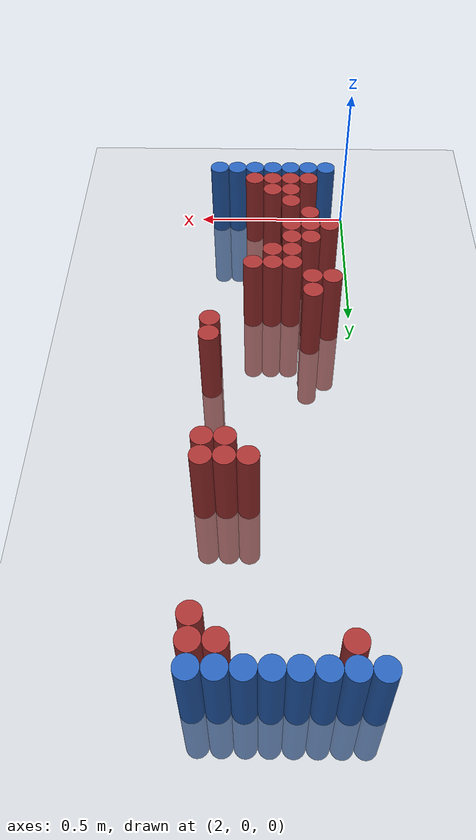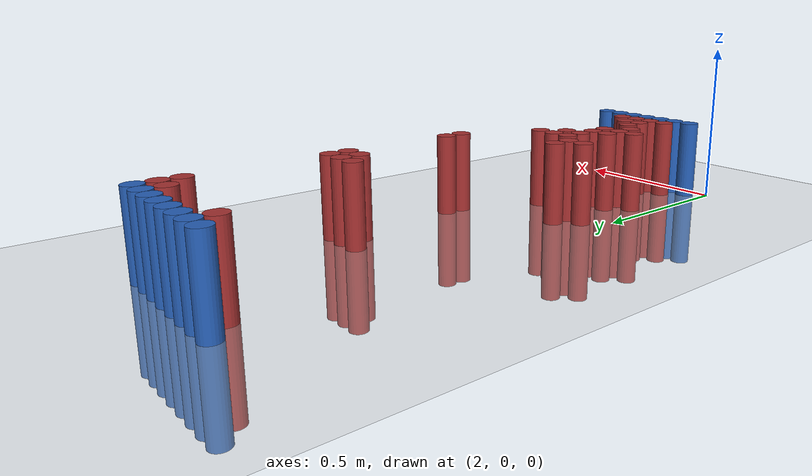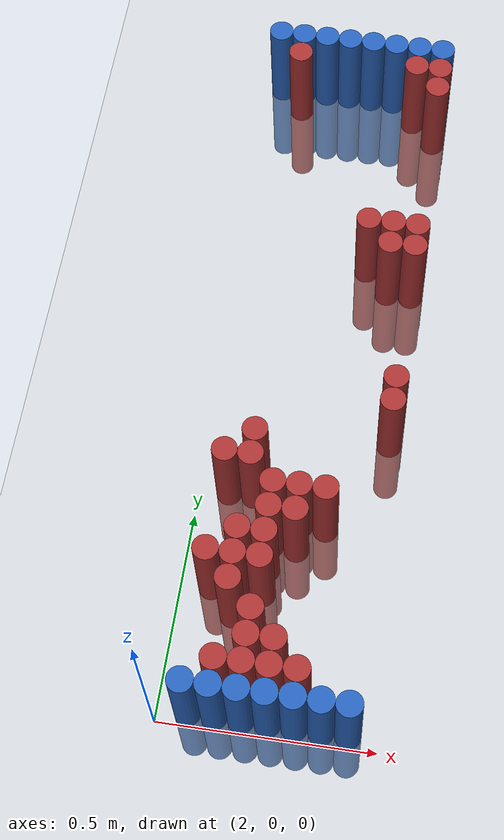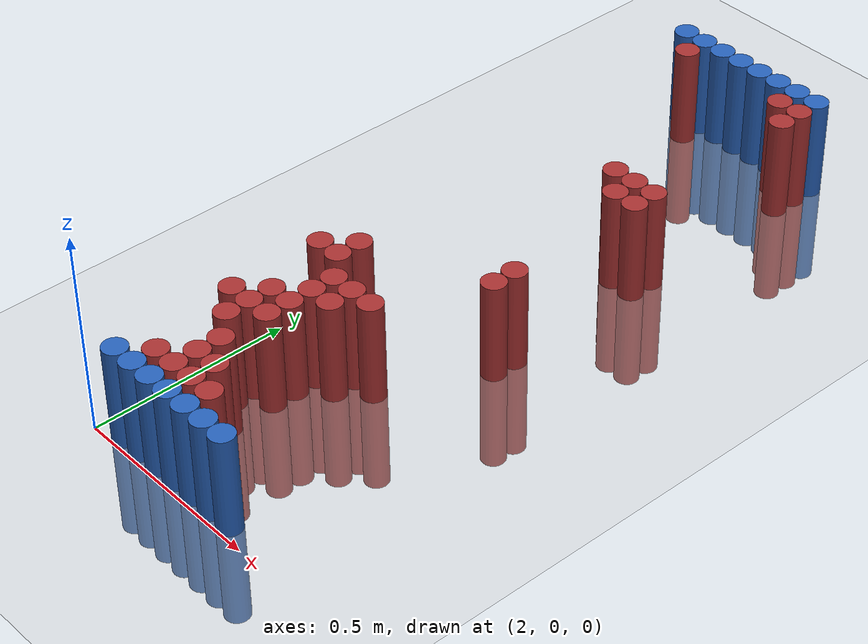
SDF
<sdf version="1.6">
 <world name="default">
  <model name="ground_plane">
   <static>1</static>
   <link name="link">
    <collision name="collision">
     <geometry><plane><normal>0 0 1</normal><size>100 100</size></plane></geometry>
     <surface><friction><ode><mu>100</mu><mu2>50</mu2></ode></friction></surface>
    </collision>
    <visual name="visual">
     <cast_shadows>0</cast_shadows>
     <geometry><plane><normal>0 0 1</normal><size>100 100</size></plane></geometry>
     <material>
      <script><uri>file://media/materials/scripts/gazebo.material</uri><name>Gazebo/Grey</name></script>
     </material>
    </visual>
   </link>
  </model>
  <model name="unit_cylinder_94">
   <static>1</static>
   <pose>2.010000 1.770000 0.000000 0.000000 0.000000 0.000000</pose>
   <link name="link">
    <inertial>
     <mass>1</mass>
     <inertia><ixx>0.145833</ixx><ixy>0</ixy><ixz>0</ixz><iyy>0.145833</iyy><iyz>0</iyz><izz>0.125</izz></inertia>
    </inertial>
    <collision name="collision">
     <geometry><cylinder><radius>0.030000</radius><length>0.5</length></cylinder></geometry>
    </collision>
    <visual name="visual">
     <geometry><cylinder><radius>0.030000</radius><length>0.5</length></cylinder></geometry>
     <material>
      <ambient>0.152000 0.379000 0.720000 1</ambient>
      <diffuse>0.152000 0.379000 0.720000 1</diffuse>
     </material>
     <material>
      <script><name>Gazebo/Grey</name><uri>file://media/materials/scripts/gazebo.material</uri></script>
     </material>
    </visual>
   </link>
  </model>
  <model name="unit_cylinder_95">
   <static>1</static>
   <pose>2.070000 1.770000 0.000000 0.000000 0.000000 0.000000</pose>
   <link name="link">
    <inertial>
     <mass>1</mass>
     <inertia><ixx>0.145833</ixx><ixy>0</ixy><ixz>0</ixz><iyy>0.145833</iyy><iyz>0</iyz><izz>0.125</izz></inertia>
    </inertial>
    <collision name="collision">
     <geometry><cylinder><radius>0.030000</radius><length>0.5</length></cylinder></geometry>
    </collision>
    <visual name="visual">
     <geometry><cylinder><radius>0.030000</radius><length>0.5</length></cylinder></geometry>
     <material>
      <ambient>0.152000 0.379000 0.720000 1</ambient>
      <diffuse>0.152000 0.379000 0.720000 1</diffuse>
     </material>
     <material>
      <script><name>Gazebo/Grey</name><uri>file://media/materials/scripts/gazebo.material</uri></script>
     </material>
    </visual>
   </link>
  </model>
  <model name="unit_cylinder_96">
   <static>1</static>
   <pose>2.130000 1.770000 0.000000 0.000000 0.000000 0.000000</pose>
   <link name="link">
    <inertial>
     <mass>1</mass>
     <inertia><ixx>0.145833</ixx><ixy>0</ixy><ixz>0</ixz><iyy>0.145833</iyy><iyz>0</iyz><izz>0.125</izz></inertia>
    </inertial>
    <collision name="collision">
     <geometry><cylinder><radius>0.030000</radius><length>0.5</length></cylinder></geometry>
    </collision>
    <visual name="visual">
     <geometry><cylinder><radius>0.030000</radius><length>0.5</length></cylinder></geometry>
     <material>
      <ambient>0.152000 0.379000 0.720000 1</ambient>
      <diffuse>0.152000 0.379000 0.720000 1</diffuse>
     </material>
     <material>
      <script><name>Gazebo/Grey</name><uri>file://media/materials/scripts/gazebo.material</uri></script>
     </material>
    </visual>
   </link>
  </model>
  <model name="unit_cylinder_97">
   <static>1</static>
   <pose>2.190000 1.770000 0.000000 0.000000 0.000000 0.000000</pose>
   <link name="link">
    <inertial>
     <mass>1</mass>
     <inertia><ixx>0.145833</ixx><ixy>0</ixy><ixz>0</ixz><iyy>0.145833</iyy><iyz>0</iyz><izz>0.125</izz></inertia>
    </inertial>
    <collision name="collision">
     <geometry><cylinder><radius>0.030000</radius><length>0.5</length></cylinder></geometry>
    </collision>
    <visual name="visual">
     <geometry><cylinder><radius>0.030000</radius><length>0.5</length></cylinder></geometry>
     <material>
      <ambient>0.152000 0.379000 0.720000 1</ambient>
      <diffuse>0.152000 0.379000 0.720000 1</diffuse>
     </material>
     <material>
      <script><name>Gazebo/Grey</name><uri>file://media/materials/scripts/gazebo.material</uri></script>
     </material>
    </visual>
   </link>
  </model>
  <model name="unit_cylinder_98">
   <static>1</static>
   <pose>2.250000 1.770000 0.000000 0.000000 0.000000 0.000000</pose>
   <link name="link">
    <inertial>
     <mass>1</mass>
     <inertia><ixx>0.145833</ixx><ixy>0</ixy><ixz>0</ixz><iyy>0.145833</iyy><iyz>0</iyz><izz>0.125</izz></inertia>
    </inertial>
    <collision name="collision">
     <geometry><cylinder><radius>0.030000</radius><length>0.5</length></cylinder></geometry>
    </collision>
    <visual name="visual">
     <geometry><cylinder><radius>0.030000</radius><length>0.5</length></cylinder></geometry>
     <material>
      <ambient>0.152000 0.379000 0.720000 1</ambient>
      <diffuse>0.152000 0.379000 0.720000 1</diffuse>
     </material>
     <material>
      <script><name>Gazebo/Grey</name><uri>file://media/materials/scripts/gazebo.material</uri></script>
     </material>
    </visual>
   </link>
  </model>
  <model name="unit_cylinder_99">
   <static>1</static>
   <pose>2.310000 1.770000 0.000000 0.000000 0.000000 0.000000</pose>
   <link name="link">
    <inertial>
     <mass>1</mass>
     <inertia><ixx>0.145833</ixx><ixy>0</ixy><ixz>0</ixz><iyy>0.145833</iyy><iyz>0</iyz><izz>0.125</izz></inertia>
    </inertial>
    <collision name="collision">
     <geometry><cylinder><radius>0.030000</radius><length>0.5</length></cylinder></geometry>
    </collision>
    <visual name="visual">
     <geometry><cylinder><radius>0.030000</radius><length>0.5</length></cylinder></geometry>
     <material>
      <ambient>0.152000 0.379000 0.720000 1</ambient>
      <diffuse>0.152000 0.379000 0.720000 1</diffuse>
     </material>
     <material>
      <script><name>Gazebo/Grey</name><uri>file://media/materials/scripts/gazebo.material</uri></script>
     </material>
    </visual>
   </link>
  </model>
  <model name="unit_cylinder_100">
   <static>1</static>
   <pose>2.370000 1.770000 0.000000 0.000000 0.000000 0.000000</pose>
   <link name="link">
    <inertial>
     <mass>1</mass>
     <inertia><ixx>0.145833</ixx><ixy>0</ixy><ixz>0</ixz><iyy>0.145833</iyy><iyz>0</iyz><izz>0.125</izz></inertia>
    </inertial>
    <collision name="collision">
     <geometry><cylinder><radius>0.030000</radius><length>0.5</length></cylinder></geometry>
    </collision>
    <visual name="visual">
     <geometry><cylinder><radius>0.030000</radius><length>0.5</length></cylinder></geometry>
     <material>
      <ambient>0.152000 0.379000 0.720000 1</ambient>
      <diffuse>0.152000 0.379000 0.720000 1</diffuse>
     </material>
     <material>
      <script><name>Gazebo/Grey</name><uri>file://media/materials/scripts/gazebo.material</uri></script>
     </material>
    </visual>
   </link>
  </model>
  <model name="unit_cylinder_101">
   <static>1</static>
   <pose>2.430000 1.770000 0.000000 0.000000 0.000000 0.000000</pose>
   <link name="link">
    <inertial>
     <mass>1</mass>
     <inertia><ixx>0.145833</ixx><ixy>0</ixy><ixz>0</ixz><iyy>0.145833</iyy><iyz>0</iyz><izz>0.125</izz></inertia>
    </inertial>
    <collision name="collision">
     <geometry><cylinder><radius>0.030000</radius><length>0.5</length></cylinder></geometry>
    </collision>
    <visual name="visual">
     <geometry><cylinder><radius>0.030000</radius><length>0.5</length></cylinder></geometry>
     <material>
      <ambient>0.152000 0.379000 0.720000 1</ambient>
      <diffuse>0.152000 0.379000 0.720000 1</diffuse>
     </material>
     <material>
      <script><name>Gazebo/Grey</name><uri>file://media/materials/scripts/gazebo.material</uri></script>
     </material>
    </visual>
   </link>
  </model>
  <model name="unit_cylinder_125">
   <static>1</static>
   <pose>2.070000 1.710000 0.000000 0.000000 0.000000 0.000000</pose>
   <link name="link">
    <inertial>
     <mass>1</mass>
     <inertia><ixx>0.145833</ixx><ixy>0</ixy><ixz>0</ixz><iyy>0.145833</iyy><iyz>0</iyz><izz>0.125</izz></inertia>
    </inertial>
    <collision name="collision">
     <geometry><cylinder><radius>0.030000</radius><length>0.5</length></cylinder></geometry>
    </collision>
    <visual name="visual">
     <geometry><cylinder><radius>0.030000</radius><length>0.5</length></cylinder></geometry>
     <material>
      <ambient>0.648000 0.192000 0.192000 1</ambient>
      <diffuse>0.648000 0.192000 0.192000 1</diffuse>
     </material>
     <material>
      <script><name>Gazebo/Grey</name><uri>file://media/materials/scripts/gazebo.material</uri></script>
     </material>
    </visual>
   </link>
  </model>
  <model name="unit_cylinder_126">
   <static>1</static>
   <pose>2.370000 1.710000 0.000000 0.000000 0.000000 0.000000</pose>
   <link name="link">
    <inertial>
     <mass>1</mass>
     <inertia><ixx>0.145833</ixx><ixy>0</ixy><ixz>0</ixz><iyy>0.145833</iyy><iyz>0</iyz><izz>0.125</izz></inertia>
    </inertial>
    <collision name="collision">
     <geometry><cylinder><radius>0.030000</radius><length>0.5</length></cylinder></geometry>
    </collision>
    <visual name="visual">
     <geometry><cylinder><radius>0.030000</radius><length>0.5</length></cylinder></geometry>
     <material>
      <ambient>0.648000 0.192000 0.192000 1</ambient>
      <diffuse>0.648000 0.192000 0.192000 1</diffuse>
     </material>
     <material>
      <script><name>Gazebo/Grey</name><uri>file://media/materials/scripts/gazebo.material</uri></script>
     </material>
    </visual>
   </link>
  </model>
  <model name="unit_cylinder_127">
   <static>1</static>
   <pose>2.430000 1.710000 0.000000 0.000000 0.000000 0.000000</pose>
   <link name="link">
    <inertial>
     <mass>1</mass>
     <inertia><ixx>0.145833</ixx><ixy>0</ixy><ixz>0</ixz><iyy>0.145833</iyy><iyz>0</iyz><izz>0.125</izz></inertia>
    </inertial>
    <collision name="collision">
     <geometry><cylinder><radius>0.030000</radius><length>0.5</length></cylinder></geometry>
    </collision>
    <visual name="visual">
     <geometry><cylinder><radius>0.030000</radius><length>0.5</length></cylinder></geometry>
     <material>
      <ambient>0.648000 0.192000 0.192000 1</ambient>
      <diffuse>0.648000 0.192000 0.192000 1</diffuse>
     </material>
     <material>
      <script><name>Gazebo/Grey</name><uri>file://media/materials/scripts/gazebo.material</uri></script>
     </material>
    </visual>
   </link>
  </model>
  <model name="unit_cylinder_145">
   <static>1</static>
   <pose>2.430000 1.650000 0.000000 0.000000 0.000000 0.000000</pose>
   <link name="link">
    <inertial>
     <mass>1</mass>
     <inertia><ixx>0.145833</ixx><ixy>0</ixy><ixz>0</ixz><iyy>0.145833</iyy><iyz>0</iyz><izz>0.125</izz></inertia>
    </inertial>
    <collision name="collision">
     <geometry><cylinder><radius>0.030000</radius><length>0.5</length></cylinder></geometry>
    </collision>
    <visual name="visual">
     <geometry><cylinder><radius>0.030000</radius><length>0.5</length></cylinder></geometry>
     <material>
      <ambient>0.648000 0.192000 0.192000 1</ambient>
      <diffuse>0.648000 0.192000 0.192000 1</diffuse>
     </material>
     <material>
      <script><name>Gazebo/Grey</name><uri>file://media/materials/scripts/gazebo.material</uri></script>
     </material>
    </visual>
   </link>
  </model>
  <model name="unit_cylinder_173">
   <static>1</static>
   <pose>2.310000 1.230000 0.000000 0.000000 0.000000 0.000000</pose>
   <link name="link">
    <inertial>
     <mass>1</mass>
     <inertia><ixx>0.145833</ixx><ixy>0</ixy><ixz>0</ixz><iyy>0.145833</iyy><iyz>0</iyz><izz>0.125</izz></inertia>
    </inertial>
    <collision name="collision">
     <geometry><cylinder><radius>0.030000</radius><length>0.5</length></cylinder></geometry>
    </collision>
    <visual name="visual">
     <geometry><cylinder><radius>0.030000</radius><length>0.5</length></cylinder></geometry>
     <material>
      <ambient>0.648000 0.192000 0.192000 1</ambient>
      <diffuse>0.648000 0.192000 0.192000 1</diffuse>
     </material>
     <material>
      <script><name>Gazebo/Grey</name><uri>file://media/materials/scripts/gazebo.material</uri></script>
     </material>
    </visual>
   </link>
  </model>
  <model name="unit_cylinder_174">
   <static>1</static>
   <pose>2.370000 1.230000 0.000000 0.000000 0.000000 0.000000</pose>
   <link name="link">
    <inertial>
     <mass>1</mass>
     <inertia><ixx>0.145833</ixx><ixy>0</ixy><ixz>0</ixz><iyy>0.145833</iyy><iyz>0</iyz><izz>0.125</izz></inertia>
    </inertial>
    <collision name="collision">
     <geometry><cylinder><radius>0.030000</radius><length>0.5</length></cylinder></geometry>
    </collision>
    <visual name="visual">
     <geometry><cylinder><radius>0.030000</radius><length>0.5</length></cylinder></geometry>
     <material>
      <ambient>0.648000 0.192000 0.192000 1</ambient>
      <diffuse>0.648000 0.192000 0.192000 1</diffuse>
     </material>
     <material>
      <script><name>Gazebo/Grey</name><uri>file://media/materials/scripts/gazebo.material</uri></script>
     </material>
    </visual>
   </link>
  </model>
  <model name="unit_cylinder_175">
   <static>1</static>
   <pose>2.430000 1.230000 0.000000 0.000000 0.000000 0.000000</pose>
   <link name="link">
    <inertial>
     <mass>1</mass>
     <inertia><ixx>0.145833</ixx><ixy>0</ixy><ixz>0</ixz><iyy>0.145833</iyy><iyz>0</iyz><izz>0.125</izz></inertia>
    </inertial>
    <collision name="collision">
     <geometry><cylinder><radius>0.030000</radius><length>0.5</length></cylinder></geometry>
    </collision>
    <visual name="visual">
     <geometry><cylinder><radius>0.030000</radius><length>0.5</length></cylinder></geometry>
     <material>
      <ambient>0.648000 0.192000 0.192000 1</ambient>
      <diffuse>0.648000 0.192000 0.192000 1</diffuse>
     </material>
     <material>
      <script><name>Gazebo/Grey</name><uri>file://media/materials/scripts/gazebo.material</uri></script>
     </material>
    </visual>
   </link>
  </model>
  <model name="unit_cylinder_182">
   <static>1</static>
   <pose>2.370000 1.170000 0.000000 0.000000 0.000000 0.000000</pose>
   <link name="link">
    <inertial>
     <mass>1</mass>
     <inertia><ixx>0.145833</ixx><ixy>0</ixy><ixz>0</ixz><iyy>0.145833</iyy><iyz>0</iyz><izz>0.125</izz></inertia>
    </inertial>
    <collision name="collision">
     <geometry><cylinder><radius>0.030000</radius><length>0.5</length></cylinder></geometry>
    </collision>
    <visual name="visual">
     <geometry><cylinder><radius>0.030000</radius><length>0.5</length></cylinder></geometry>
     <material>
      <ambient>0.648000 0.192000 0.192000 1</ambient>
      <diffuse>0.648000 0.192000 0.192000 1</diffuse>
     </material>
     <material>
      <script><name>Gazebo/Grey</name><uri>file://media/materials/scripts/gazebo.material</uri></script>
     </material>
    </visual>
   </link>
  </model>
  <model name="unit_cylinder_183">
   <static>1</static>
   <pose>2.430000 1.170000 0.000000 0.000000 0.000000 0.000000</pose>
   <link name="link">
    <inertial>
     <mass>1</mass>
     <inertia><ixx>0.145833</ixx><ixy>0</ixy><ixz>0</ixz><iyy>0.145833</iyy><iyz>0</iyz><izz>0.125</izz></inertia>
    </inertial>
    <collision name="collision">
     <geometry><cylinder><radius>0.030000</radius><length>0.5</length></cylinder></geometry>
    </collision>
    <visual name="visual">
     <geometry><cylinder><radius>0.030000</radius><length>0.5</length></cylinder></geometry>
     <material>
      <ambient>0.648000 0.192000 0.192000 1</ambient>
      <diffuse>0.648000 0.192000 0.192000 1</diffuse>
     </material>
     <material>
      <script><name>Gazebo/Grey</name><uri>file://media/materials/scripts/gazebo.material</uri></script>
     </material>
    </visual>
   </link>
  </model>
  <model name="unit_cylinder_197">
   <static>1</static>
   <pose>2.430000 0.810000 0.000000 0.000000 0.000000 0.000000</pose>
   <link name="link">
    <inertial>
     <mass>1</mass>
     <inertia><ixx>0.145833</ixx><ixy>0</ixy><ixz>0</ixz><iyy>0.145833</iyy><iyz>0</iyz><izz>0.125</izz></inertia>
    </inertial>
    <collision name="collision">
     <geometry><cylinder><radius>0.030000</radius><length>0.5</length></cylinder></geometry>
    </collision>
    <visual name="visual">
     <geometry><cylinder><radius>0.030000</radius><length>0.5</length></cylinder></geometry>
     <material>
      <ambient>0.648000 0.192000 0.192000 1</ambient>
      <diffuse>0.648000 0.192000 0.192000 1</diffuse>
     </material>
     <material>
      <script><name>Gazebo/Grey</name><uri>file://media/materials/scripts/gazebo.material</uri></script>
     </material>
    </visual>
   </link>
  </model>
  <model name="unit_cylinder_198">
   <static>1</static>
   <pose>2.430000 0.750000 0.000000 0.000000 0.000000 0.000000</pose>
   <link name="link">
    <inertial>
     <mass>1</mass>
     <inertia><ixx>0.145833</ixx><ixy>0</ixy><ixz>0</ixz><iyy>0.145833</iyy><iyz>0</iyz><izz>0.125</izz></inertia>
    </inertial>
    <collision name="collision">
     <geometry><cylinder><radius>0.030000</radius><length>0.5</length></cylinder></geometry>
    </collision>
    <visual name="visual">
     <geometry><cylinder><radius>0.030000</radius><length>0.5</length></cylinder></geometry>
     <material>
      <ambient>0.648000 0.192000 0.192000 1</ambient>
      <diffuse>0.648000 0.192000 0.192000 1</diffuse>
     </material>
     <material>
      <script><name>Gazebo/Grey</name><uri>file://media/materials/scripts/gazebo.material</uri></script>
     </material>
    </visual>
   </link>
  </model>
  <model name="unit_cylinder_201">
   <static>1</static>
   <pose>2.130000 0.630000 0.000000 0.000000 0.000000 0.000000</pose>
   <link name="link">
    <inertial>
     <mass>1</mass>
     <inertia><ixx>0.145833</ixx><ixy>0</ixy><ixz>0</ixz><iyy>0.145833</iyy><iyz>0</iyz><izz>0.125</izz></inertia>
    </inertial>
    <collision name="collision">
     <geometry><cylinder><radius>0.030000</radius><length>0.5</length></cylinder></geometry>
    </collision>
    <visual name="visual">
     <geometry><cylinder><radius>0.030000</radius><length>0.5</length></cylinder></geometry>
     <material>
      <ambient>0.648000 0.192000 0.192000 1</ambient>
      <diffuse>0.648000 0.192000 0.192000 1</diffuse>
     </material>
     <material>
      <script><name>Gazebo/Grey</name><uri>file://media/materials/scripts/gazebo.material</uri></script>
     </material>
    </visual>
   </link>
  </model>
  <model name="unit_cylinder_205">
   <static>1</static>
   <pose>2.070000 0.570000 0.000000 0.000000 0.000000 0.000000</pose>
   <link name="link">
    <inertial>
     <mass>1</mass>
     <inertia><ixx>0.145833</ixx><ixy>0</ixy><ixz>0</ixz><iyy>0.145833</iyy><iyz>0</iyz><izz>0.125</izz></inertia>
    </inertial>
    <collision name="collision">
     <geometry><cylinder><radius>0.030000</radius><length>0.5</length></cylinder></geometry>
    </collision>
    <visual name="visual">
     <geometry><cylinder><radius>0.030000</radius><length>0.5</length></cylinder></geometry>
     <material>
      <ambient>0.648000 0.192000 0.192000 1</ambient>
      <diffuse>0.648000 0.192000 0.192000 1</diffuse>
     </material>
     <material>
      <script><name>Gazebo/Grey</name><uri>file://media/materials/scripts/gazebo.material</uri></script>
     </material>
    </visual>
   </link>
  </model>
  <model name="unit_cylinder_206">
   <static>1</static>
   <pose>2.130000 0.570000 0.000000 0.000000 0.000000 0.000000</pose>
   <link name="link">
    <inertial>
     <mass>1</mass>
     <inertia><ixx>0.145833</ixx><ixy>0</ixy><ixz>0</ixz><iyy>0.145833</iyy><iyz>0</iyz><izz>0.125</izz></inertia>
    </inertial>
    <collision name="collision">
     <geometry><cylinder><radius>0.030000</radius><length>0.5</length></cylinder></geometry>
    </collision>
    <visual name="visual">
     <geometry><cylinder><radius>0.030000</radius><length>0.5</length></cylinder></geometry>
     <material>
      <ambient>0.648000 0.192000 0.192000 1</ambient>
      <diffuse>0.648000 0.192000 0.192000 1</diffuse>
     </material>
     <material>
      <script><name>Gazebo/Grey</name><uri>file://media/materials/scripts/gazebo.material</uri></script>
     </material>
    </visual>
   </link>
  </model>
  <model name="unit_cylinder_208">
   <static>1</static>
   <pose>2.190000 0.510000 0.000000 0.000000 0.000000 0.000000</pose>
   <link name="link">
    <inertial>
     <mass>1</mass>
     <inertia><ixx>0.145833</ixx><ixy>0</ixy><ixz>0</ixz><iyy>0.145833</iyy><iyz>0</iyz><izz>0.125</izz></inertia>
    </inertial>
    <collision name="collision">
     <geometry><cylinder><radius>0.030000</radius><length>0.5</length></cylinder></geometry>
    </collision>
    <visual name="visual">
     <geometry><cylinder><radius>0.030000</radius><length>0.5</length></cylinder></geometry>
     <material>
      <ambient>0.648000 0.192000 0.192000 1</ambient>
      <diffuse>0.648000 0.192000 0.192000 1</diffuse>
     </material>
     <material>
      <script><name>Gazebo/Grey</name><uri>file://media/materials/scripts/gazebo.material</uri></script>
     </material>
    </visual>
   </link>
  </model>
  <model name="unit_cylinder_209">
   <static>1</static>
   <pose>2.250000 0.510000 0.000000 0.000000 0.000000 0.000000</pose>
   <link name="link">
    <inertial>
     <mass>1</mass>
     <inertia><ixx>0.145833</ixx><ixy>0</ixy><ixz>0</ixz><iyy>0.145833</iyy><iyz>0</iyz><izz>0.125</izz></inertia>
    </inertial>
    <collision name="collision">
     <geometry><cylinder><radius>0.030000</radius><length>0.5</length></cylinder></geometry>
    </collision>
    <visual name="visual">
     <geometry><cylinder><radius>0.030000</radius><length>0.5</length></cylinder></geometry>
     <material>
      <ambient>0.648000 0.192000 0.192000 1</ambient>
      <diffuse>0.648000 0.192000 0.192000 1</diffuse>
     </material>
     <material>
      <script><name>Gazebo/Grey</name><uri>file://media/materials/scripts/gazebo.material</uri></script>
     </material>
    </visual>
   </link>
  </model>
  <model name="unit_cylinder_210">
   <static>1</static>
   <pose>2.310000 0.510000 0.000000 0.000000 0.000000 0.000000</pose>
   <link name="link">
    <inertial>
     <mass>1</mass>
     <inertia><ixx>0.145833</ixx><ixy>0</ixy><ixz>0</ixz><iyy>0.145833</iyy><iyz>0</iyz><izz>0.125</izz></inertia>
    </inertial>
    <collision name="collision">
     <geometry><cylinder><radius>0.030000</radius><length>0.5</length></cylinder></geometry>
    </collision>
    <visual name="visual">
     <geometry><cylinder><radius>0.030000</radius><length>0.5</length></cylinder></geometry>
     <material>
      <ambient>0.648000 0.192000 0.192000 1</ambient>
      <diffuse>0.648000 0.192000 0.192000 1</diffuse>
     </material>
     <material>
      <script><name>Gazebo/Grey</name><uri>file://media/materials/scripts/gazebo.material</uri></script>
     </material>
    </visual>
   </link>
  </model>
  <model name="unit_cylinder_213">
   <static>1</static>
   <pose>2.190000 0.450000 0.000000 0.000000 0.000000 0.000000</pose>
   <link name="link">
    <inertial>
     <mass>1</mass>
     <inertia><ixx>0.145833</ixx><ixy>0</ixy><ixz>0</ixz><iyy>0.145833</iyy><iyz>0</iyz><izz>0.125</izz></inertia>
    </inertial>
    <collision name="collision">
     <geometry><cylinder><radius>0.030000</radius><length>0.5</length></cylinder></geometry>
    </collision>
    <visual name="visual">
     <geometry><cylinder><radius>0.030000</radius><length>0.5</length></cylinder></geometry>
     <material>
      <ambient>0.648000 0.192000 0.192000 1</ambient>
      <diffuse>0.648000 0.192000 0.192000 1</diffuse>
     </material>
     <material>
      <script><name>Gazebo/Grey</name><uri>file://media/materials/scripts/gazebo.material</uri></script>
     </material>
    </visual>
   </link>
  </model>
  <model name="unit_cylinder_214">
   <static>1</static>
   <pose>2.250000 0.450000 0.000000 0.000000 0.000000 0.000000</pose>
   <link name="link">
    <inertial>
     <mass>1</mass>
     <inertia><ixx>0.145833</ixx><ixy>0</ixy><ixz>0</ixz><iyy>0.145833</iyy><iyz>0</iyz><izz>0.125</izz></inertia>
    </inertial>
    <collision name="collision">
     <geometry><cylinder><radius>0.030000</radius><length>0.5</length></cylinder></geometry>
    </collision>
    <visual name="visual">
     <geometry><cylinder><radius>0.030000</radius><length>0.5</length></cylinder></geometry>
     <material>
      <ambient>0.648000 0.192000 0.192000 1</ambient>
      <diffuse>0.648000 0.192000 0.192000 1</diffuse>
     </material>
     <material>
      <script><name>Gazebo/Grey</name><uri>file://media/materials/scripts/gazebo.material</uri></script>
     </material>
    </visual>
   </link>
  </model>
  <model name="unit_cylinder_218">
   <static>1</static>
   <pose>2.130000 0.390000 0.000000 0.000000 0.000000 0.000000</pose>
   <link name="link">
    <inertial>
     <mass>1</mass>
     <inertia><ixx>0.145833</ixx><ixy>0</ixy><ixz>0</ixz><iyy>0.145833</iyy><iyz>0</iyz><izz>0.125</izz></inertia>
    </inertial>
    <collision name="collision">
     <geometry><cylinder><radius>0.030000</radius><length>0.5</length></cylinder></geometry>
    </collision>
    <visual name="visual">
     <geometry><cylinder><radius>0.030000</radius><length>0.5</length></cylinder></geometry>
     <material>
      <ambient>0.648000 0.192000 0.192000 1</ambient>
      <diffuse>0.648000 0.192000 0.192000 1</diffuse>
     </material>
     <material>
      <script><name>Gazebo/Grey</name><uri>file://media/materials/scripts/gazebo.material</uri></script>
     </material>
    </visual>
   </link>
  </model>
  <model name="unit_cylinder_219">
   <static>1</static>
   <pose>2.190000 0.390000 0.000000 0.000000 0.000000 0.000000</pose>
   <link name="link">
    <inertial>
     <mass>1</mass>
     <inertia><ixx>0.145833</ixx><ixy>0</ixy><ixz>0</ixz><iyy>0.145833</iyy><iyz>0</iyz><izz>0.125</izz></inertia>
    </inertial>
    <collision name="collision">
     <geometry><cylinder><radius>0.030000</radius><length>0.5</length></cylinder></geometry>
    </collision>
    <visual name="visual">
     <geometry><cylinder><radius>0.030000</radius><length>0.5</length></cylinder></geometry>
     <material>
      <ambient>0.648000 0.192000 0.192000 1</ambient>
      <diffuse>0.648000 0.192000 0.192000 1</diffuse>
     </material>
     <material>
      <script><name>Gazebo/Grey</name><uri>file://media/materials/scripts/gazebo.material</uri></script>
     </material>
    </visual>
   </link>
  </model>
  <model name="unit_cylinder_222">
   <static>1</static>
   <pose>2.070000 0.330000 0.000000 0.000000 0.000000 0.000000</pose>
   <link name="link">
    <inertial>
     <mass>1</mass>
     <inertia><ixx>0.145833</ixx><ixy>0</ixy><ixz>0</ixz><iyy>0.145833</iyy><iyz>0</iyz><izz>0.125</izz></inertia>
    </inertial>
    <collision name="collision">
     <geometry><cylinder><radius>0.030000</radius><length>0.5</length></cylinder></geometry>
    </collision>
    <visual name="visual">
     <geometry><cylinder><radius>0.030000</radius><length>0.5</length></cylinder></geometry>
     <material>
      <ambient>0.648000 0.192000 0.192000 1</ambient>
      <diffuse>0.648000 0.192000 0.192000 1</diffuse>
     </material>
     <material>
      <script><name>Gazebo/Grey</name><uri>file://media/materials/scripts/gazebo.material</uri></script>
     </material>
    </visual>
   </link>
  </model>
  <model name="unit_cylinder_223">
   <static>1</static>
   <pose>2.130000 0.330000 0.000000 0.000000 0.000000 0.000000</pose>
   <link name="link">
    <inertial>
     <mass>1</mass>
     <inertia><ixx>0.145833</ixx><ixy>0</ixy><ixz>0</ixz><iyy>0.145833</iyy><iyz>0</iyz><izz>0.125</izz></inertia>
    </inertial>
    <collision name="collision">
     <geometry><cylinder><radius>0.030000</radius><length>0.5</length></cylinder></geometry>
    </collision>
    <visual name="visual">
     <geometry><cylinder><radius>0.030000</radius><length>0.5</length></cylinder></geometry>
     <material>
      <ambient>0.648000 0.192000 0.192000 1</ambient>
      <diffuse>0.648000 0.192000 0.192000 1</diffuse>
     </material>
     <material>
      <script><name>Gazebo/Grey</name><uri>file://media/materials/scripts/gazebo.material</uri></script>
     </material>
    </visual>
   </link>
  </model>
  <model name="unit_cylinder_224">
   <static>1</static>
   <pose>2.190000 0.330000 0.000000 0.000000 0.000000 0.000000</pose>
   <link name="link">
    <inertial>
     <mass>1</mass>
     <inertia><ixx>0.145833</ixx><ixy>0</ixy><ixz>0</ixz><iyy>0.145833</iyy><iyz>0</iyz><izz>0.125</izz></inertia>
    </inertial>
    <collision name="collision">
     <geometry><cylinder><radius>0.030000</radius><length>0.5</length></cylinder></geometry>
    </collision>
    <visual name="visual">
     <geometry><cylinder><radius>0.030000</radius><length>0.5</length></cylinder></geometry>
     <material>
      <ambient>0.648000 0.192000 0.192000 1</ambient>
      <diffuse>0.648000 0.192000 0.192000 1</diffuse>
     </material>
     <material>
      <script><name>Gazebo/Grey</name><uri>file://media/materials/scripts/gazebo.material</uri></script>
     </material>
    </visual>
   </link>
  </model>
  <model name="unit_cylinder_229">
   <static>1</static>
   <pose>2.130000 0.270000 0.000000 0.000000 0.000000 0.000000</pose>
   <link name="link">
    <inertial>
     <mass>1</mass>
     <inertia><ixx>0.145833</ixx><ixy>0</ixy><ixz>0</ixz><iyy>0.145833</iyy><iyz>0</iyz><izz>0.125</izz></inertia>
    </inertial>
    <collision name="collision">
     <geometry><cylinder><radius>0.030000</radius><length>0.5</length></cylinder></geometry>
    </collision>
    <visual name="visual">
     <geometry><cylinder><radius>0.030000</radius><length>0.5</length></cylinder></geometry>
     <material>
      <ambient>0.648000 0.192000 0.192000 1</ambient>
      <diffuse>0.648000 0.192000 0.192000 1</diffuse>
     </material>
     <material>
      <script><name>Gazebo/Grey</name><uri>file://media/materials/scripts/gazebo.material</uri></script>
     </material>
    </visual>
   </link>
  </model>
  <model name="unit_cylinder_232">
   <static>1</static>
   <pose>2.190000 0.210000 0.000000 0.000000 0.000000 0.000000</pose>
   <link name="link">
    <inertial>
     <mass>1</mass>
     <inertia><ixx>0.145833</ixx><ixy>0</ixy><ixz>0</ixz><iyy>0.145833</iyy><iyz>0</iyz><izz>0.125</izz></inertia>
    </inertial>
    <collision name="collision">
     <geometry><cylinder><radius>0.030000</radius><length>0.5</length></cylinder></geometry>
    </collision>
    <visual name="visual">
     <geometry><cylinder><radius>0.030000</radius><length>0.5</length></cylinder></geometry>
     <material>
      <ambient>0.648000 0.192000 0.192000 1</ambient>
      <diffuse>0.648000 0.192000 0.192000 1</diffuse>
     </material>
     <material>
      <script><name>Gazebo/Grey</name><uri>file://media/materials/scripts/gazebo.material</uri></script>
     </material>
    </visual>
   </link>
  </model>
  <model name="unit_cylinder_233">
   <static>1</static>
   <pose>2.190000 0.150000 0.000000 0.000000 0.000000 0.000000</pose>
   <link name="link">
    <inertial>
     <mass>1</mass>
     <inertia><ixx>0.145833</ixx><ixy>0</ixy><ixz>0</ixz><iyy>0.145833</iyy><iyz>0</iyz><izz>0.125</izz></inertia>
    </inertial>
    <collision name="collision">
     <geometry><cylinder><radius>0.030000</radius><length>0.5</length></cylinder></geometry>
    </collision>
    <visual name="visual">
     <geometry><cylinder><radius>0.030000</radius><length>0.5</length></cylinder></geometry>
     <material>
      <ambient>0.648000 0.192000 0.192000 1</ambient>
      <diffuse>0.648000 0.192000 0.192000 1</diffuse>
     </material>
     <material>
      <script><name>Gazebo/Grey</name><uri>file://media/materials/scripts/gazebo.material</uri></script>
     </material>
    </visual>
   </link>
  </model>
  <model name="unit_cylinder_234">
   <static>1</static>
   <pose>2.250000 0.150000 0.000000 0.000000 0.000000 0.000000</pose>
   <link name="link">
    <inertial>
     <mass>1</mass>
     <inertia><ixx>0.145833</ixx><ixy>0</ixy><ixz>0</ixz><iyy>0.145833</iyy><iyz>0</iyz><izz>0.125</izz></inertia>
    </inertial>
    <collision name="collision">
     <geometry><cylinder><radius>0.030000</radius><length>0.5</length></cylinder></geometry>
    </collision>
    <visual name="visual">
     <geometry><cylinder><radius>0.030000</radius><length>0.5</length></cylinder></geometry>
     <material>
      <ambient>0.648000 0.192000 0.192000 1</ambient>
      <diffuse>0.648000 0.192000 0.192000 1</diffuse>
     </material>
     <material>
      <script><name>Gazebo/Grey</name><uri>file://media/materials/scripts/gazebo.material</uri></script>
     </material>
    </visual>
   </link>
  </model>
  <model name="unit_cylinder_237">
   <static>1</static>
   <pose>2.130000 0.090000 0.000000 0.000000 0.000000 0.000000</pose>
   <link name="link">
    <inertial>
     <mass>1</mass>
     <inertia><ixx>0.145833</ixx><ixy>0</ixy><ixz>0</ixz><iyy>0.145833</iyy><iyz>0</iyz><izz>0.125</izz></inertia>
    </inertial>
    <collision name="collision">
     <geometry><cylinder><radius>0.030000</radius><length>0.5</length></cylinder></geometry>
    </collision>
    <visual name="visual">
     <geometry><cylinder><radius>0.030000</radius><length>0.5</length></cylinder></geometry>
     <material>
      <ambient>0.648000 0.192000 0.192000 1</ambient>
      <diffuse>0.648000 0.192000 0.192000 1</diffuse>
     </material>
     <material>
      <script><name>Gazebo/Grey</name><uri>file://media/materials/scripts/gazebo.material</uri></script>
     </material>
    </visual>
   </link>
  </model>
  <model name="unit_cylinder_238">
   <static>1</static>
   <pose>2.190000 0.090000 0.000000 0.000000 0.000000 0.000000</pose>
   <link name="link">
    <inertial>
     <mass>1</mass>
     <inertia><ixx>0.145833</ixx><ixy>0</ixy><ixz>0</ixz><iyy>0.145833</iyy><iyz>0</iyz><izz>0.125</izz></inertia>
    </inertial>
    <collision name="collision">
     <geometry><cylinder><radius>0.030000</radius><length>0.5</length></cylinder></geometry>
    </collision>
    <visual name="visual">
     <geometry><cylinder><radius>0.030000</radius><length>0.5</length></cylinder></geometry>
     <material>
      <ambient>0.648000 0.192000 0.192000 1</ambient>
      <diffuse>0.648000 0.192000 0.192000 1</diffuse>
     </material>
     <material>
      <script><name>Gazebo/Grey</name><uri>file://media/materials/scripts/gazebo.material</uri></script>
     </material>
    </visual>
   </link>
  </model>
  <model name="unit_cylinder_239">
   <static>1</static>
   <pose>2.250000 0.090000 0.000000 0.000000 0.000000 0.000000</pose>
   <link name="link">
    <inertial>
     <mass>1</mass>
     <inertia><ixx>0.145833</ixx><ixy>0</ixy><ixz>0</ixz><iyy>0.145833</iyy><iyz>0</iyz><izz>0.125</izz></inertia>
    </inertial>
    <collision name="collision">
     <geometry><cylinder><radius>0.030000</radius><length>0.5</length></cylinder></geometry>
    </collision>
    <visual name="visual">
     <geometry><cylinder><radius>0.030000</radius><length>0.5</length></cylinder></geometry>
     <material>
      <ambient>0.648000 0.192000 0.192000 1</ambient>
      <diffuse>0.648000 0.192000 0.192000 1</diffuse>
     </material>
     <material>
      <script><name>Gazebo/Grey</name><uri>file://media/materials/scripts/gazebo.material</uri></script>
     </material>
    </visual>
   </link>
  </model>
  <model name="unit_cylinder_240">
   <static>1</static>
   <pose>2.310000 0.090000 0.000000 0.000000 0.000000 0.000000</pose>
   <link name="link">
    <inertial>
     <mass>1</mass>
     <inertia><ixx>0.145833</ixx><ixy>0</ixy><ixz>0</ixz><iyy>0.145833</iyy><iyz>0</iyz><izz>0.125</izz></inertia>
    </inertial>
    <collision name="collision">
     <geometry><cylinder><radius>0.030000</radius><length>0.5</length></cylinder></geometry>
    </collision>
    <visual name="visual">
     <geometry><cylinder><radius>0.030000</radius><length>0.5</length></cylinder></geometry>
     <material>
      <ambient>0.648000 0.192000 0.192000 1</ambient>
      <diffuse>0.648000 0.192000 0.192000 1</diffuse>
     </material>
     <material>
      <script><name>Gazebo/Grey</name><uri>file://media/materials/scripts/gazebo.material</uri></script>
     </material>
    </visual>
   </link>
  </model>
  <model name="unit_cylinder_252">
   <static>1</static>
   <pose>2.070000 0.030000 0.000000 0.000000 0.000000 0.000000</pose>
   <link name="link">
    <inertial>
     <mass>1</mass>
     <inertia><ixx>0.145833</ixx><ixy>0</ixy><ixz>0</ixz><iyy>0.145833</iyy><iyz>0</iyz><izz>0.125</izz></inertia>
    </inertial>
    <collision name="collision">
     <geometry><cylinder><radius>0.030000</radius><length>0.5</length></cylinder></geometry>
    </collision>
    <visual name="visual">
     <geometry><cylinder><radius>0.030000</radius><length>0.5</length></cylinder></geometry>
     <material>
      <ambient>0.152000 0.379000 0.720000 1</ambient>
      <diffuse>0.152000 0.379000 0.720000 1</diffuse>
     </material>
     <material>
      <script><name>Gazebo/Grey</name><uri>file://media/materials/scripts/gazebo.material</uri></script>
     </material>
    </visual>
   </link>
  </model>
  <model name="unit_cylinder_253">
   <static>1</static>
   <pose>2.130000 0.030000 0.000000 0.000000 0.000000 0.000000</pose>
   <link name="link">
    <inertial>
     <mass>1</mass>
     <inertia><ixx>0.145833</ixx><ixy>0</ixy><ixz>0</ixz><iyy>0.145833</iyy><iyz>0</iyz><izz>0.125</izz></inertia>
    </inertial>
    <collision name="collision">
     <geometry><cylinder><radius>0.030000</radius><length>0.5</length></cylinder></geometry>
    </collision>
    <visual name="visual">
     <geometry><cylinder><radius>0.030000</radius><length>0.5</length></cylinder></geometry>
     <material>
      <ambient>0.152000 0.379000 0.720000 1</ambient>
      <diffuse>0.152000 0.379000 0.720000 1</diffuse>
     </material>
     <material>
      <script><name>Gazebo/Grey</name><uri>file://media/materials/scripts/gazebo.material</uri></script>
     </material>
    </visual>
   </link>
  </model>
  <model name="unit_cylinder_254">
   <static>1</static>
   <pose>2.190000 0.030000 0.000000 0.000000 0.000000 0.000000</pose>
   <link name="link">
    <inertial>
     <mass>1</mass>
     <inertia><ixx>0.145833</ixx><ixy>0</ixy><ixz>0</ixz><iyy>0.145833</iyy><iyz>0</iyz><izz>0.125</izz></inertia>
    </inertial>
    <collision name="collision">
     <geometry><cylinder><radius>0.030000</radius><length>0.5</length></cylinder></geometry>
    </collision>
    <visual name="visual">
     <geometry><cylinder><radius>0.030000</radius><length>0.5</length></cylinder></geometry>
     <material>
      <ambient>0.152000 0.379000 0.720000 1</ambient>
      <diffuse>0.152000 0.379000 0.720000 1</diffuse>
     </material>
     <material>
      <script><name>Gazebo/Grey</name><uri>file://media/materials/scripts/gazebo.material</uri></script>
     </material>
    </visual>
   </link>
  </model>
  <model name="unit_cylinder_255">
   <static>1</static>
   <pose>2.250000 0.030000 0.000000 0.000000 0.000000 0.000000</pose>
   <link name="link">
    <inertial>
     <mass>1</mass>
     <inertia><ixx>0.145833</ixx><ixy>0</ixy><ixz>0</ixz><iyy>0.145833</iyy><iyz>0</iyz><izz>0.125</izz></inertia>
    </inertial>
    <collision name="collision">
     <geometry><cylinder><radius>0.030000</radius><length>0.5</length></cylinder></geometry>
    </collision>
    <visual name="visual">
     <geometry><cylinder><radius>0.030000</radius><length>0.5</length></cylinder></geometry>
     <material>
      <ambient>0.152000 0.379000 0.720000 1</ambient>
      <diffuse>0.152000 0.379000 0.720000 1</diffuse>
     </material>
     <material>
      <script><name>Gazebo/Grey</name><uri>file://media/materials/scripts/gazebo.material</uri></script>
     </material>
    </visual>
   </link>
  </model>
  <model name="unit_cylinder_256">
   <static>1</static>
   <pose>2.310000 0.030000 0.000000 0.000000 0.000000 0.000000</pose>
   <link name="link">
    <inertial>
     <mass>1</mass>
     <inertia><ixx>0.145833</ixx><ixy>0</ixy><ixz>0</ixz><iyy>0.145833</iyy><iyz>0</iyz><izz>0.125</izz></inertia>
    </inertial>
    <collision name="collision">
     <geometry><cylinder><radius>0.030000</radius><length>0.5</length></cylinder></geometry>
    </collision>
    <visual name="visual">
     <geometry><cylinder><radius>0.030000</radius><length>0.5</length></cylinder></geometry>
     <material>
      <ambient>0.152000 0.379000 0.720000 1</ambient>
      <diffuse>0.152000 0.379000 0.720000 1</diffuse>
     </material>
     <material>
      <script><name>Gazebo/Grey</name><uri>file://media/materials/scripts/gazebo.material</uri></script>
     </material>
    </visual>
   </link>
  </model>
  <model name="unit_cylinder_257">
   <static>1</static>
   <pose>2.370000 0.030000 0.000000 0.000000 0.000000 0.000000</pose>
   <link name="link">
    <inertial>
     <mass>1</mass>
     <inertia><ixx>0.145833</ixx><ixy>0</ixy><ixz>0</ixz><iyy>0.145833</iyy><iyz>0</iyz><izz>0.125</izz></inertia>
    </inertial>
    <collision name="collision">
     <geometry><cylinder><radius>0.030000</radius><length>0.5</length></cylinder></geometry>
    </collision>
    <visual name="visual">
     <geometry><cylinder><radius>0.030000</radius><length>0.5</length></cylinder></geometry>
     <material>
      <ambient>0.152000 0.379000 0.720000 1</ambient>
      <diffuse>0.152000 0.379000 0.720000 1</diffuse>
     </material>
     <material>
      <script><name>Gazebo/Grey</name><uri>file://media/materials/scripts/gazebo.material</uri></script>
     </material>
    </visual>
   </link>
  </model>
  <model name="unit_cylinder_258">
   <static>1</static>
   <pose>2.430000 0.030000 0.000000 0.000000 0.000000 0.000000</pose>
   <link name="link">
    <inertial>
     <mass>1</mass>
     <inertia><ixx>0.145833</ixx><ixy>0</ixy><ixz>0</ixz><iyy>0.145833</iyy><iyz>0</iyz><izz>0.125</izz></inertia>
    </inertial>
    <collision name="collision">
     <geometry><cylinder><radius>0.030000</radius><length>0.5</length></cylinder></geometry>
    </collision>
    <visual name="visual">
     <geometry><cylinder><radius>0.030000</radius><length>0.5</length></cylinder></geometry>
     <material>
      <ambient>0.152000 0.379000 0.720000 1</ambient>
      <diffuse>0.152000 0.379000 0.720000 1</diffuse>
     </material>
     <material>
      <script><name>Gazebo/Grey</name><uri>file://media/materials/scripts/gazebo.material</uri></script>
     </material>
    </visual>
   </link>
  </model>
 </world>
</sdf>
